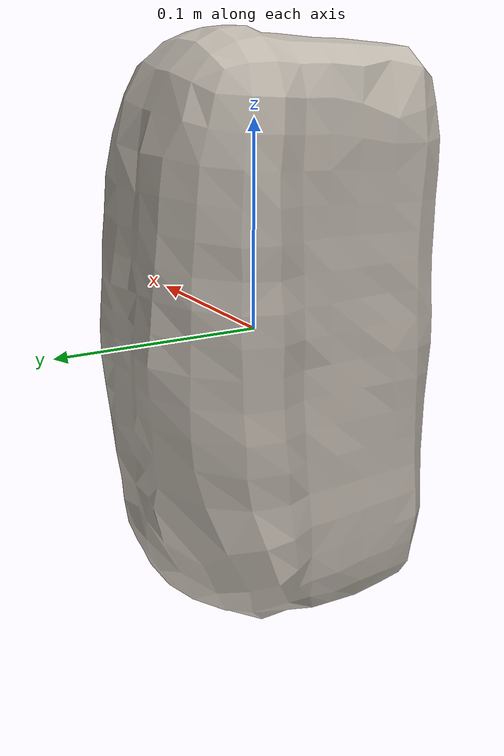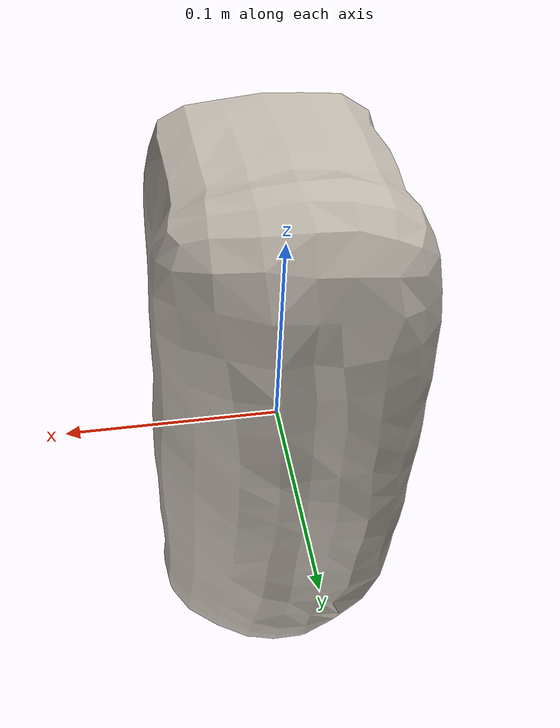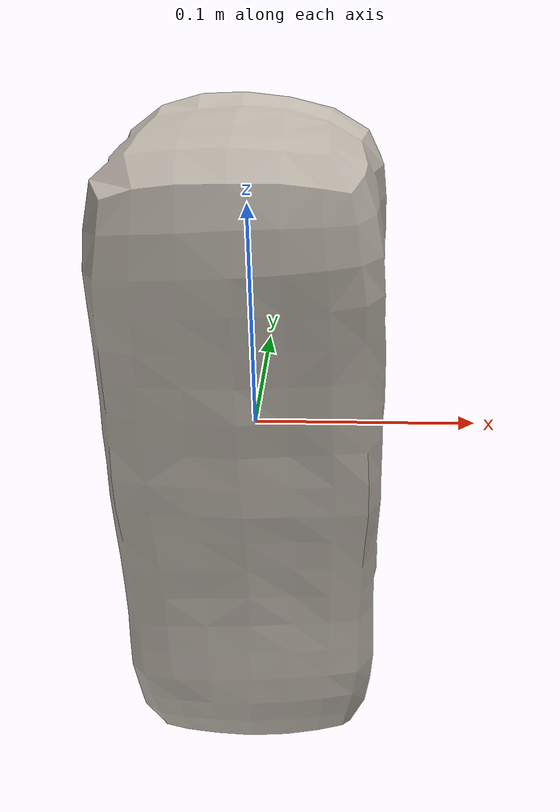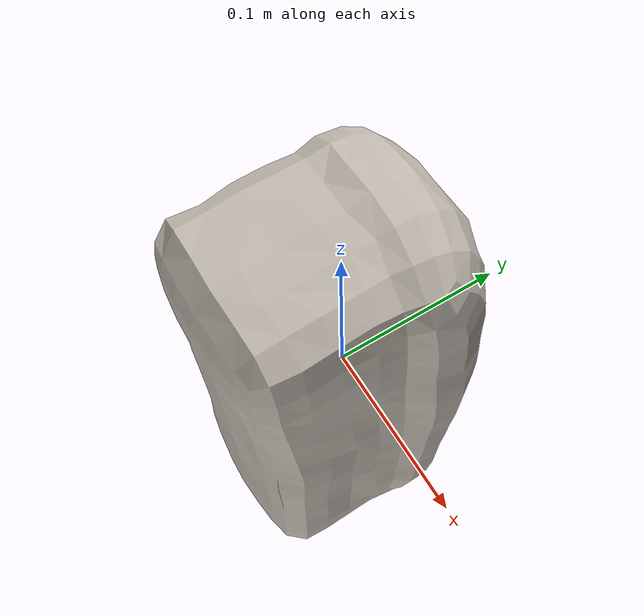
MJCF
<mujoco model="Bread_1">
  <compiler autolimits="true" boundmass="0.01" angle="radian"/>
  <default>
    <default class="/">
      <default class="__VISUAL_MJT__">
        <geom contype="0" conaffinity="0" group="0"/>
      </default>
      <default class="__STRUCTURAL_MJT__">
        <geom contype="8" conaffinity="15" group="4" friction="0.90000000000000002 0.90000000000000002 0.001" solref="0.025000000000000001 1" solimp="0.998 0.998 0.001"/>
      </default>
      <default class="__DYNAMIC_MJT__">
        <geom contype="1" conaffinity="15" group="4" friction="0.90000000000000002 0.90000000000000002 0.001" solref="0.025000000000000001 1" solimp="0.998 0.998 0.001"/>
      </default>
    </default>
  </default>
  <asset>
    <texture name="Bread1_Mat1" type="2d" file="Bread1_AlbedoTransparency.png"/>
    <material name="material_Bread1_Mat1" class="/" texture="Bread1_Mat1" specular="0.5" shininess="0.5" rgba="1 1 1 1"/>
    <mesh name="Bread_1_bread1_a_mesh" class="/" file="Bread_1_bread1_a_mesh/Bread_1_bread1_a_mesh.obj" scale="1 1 1"/>
  </asset>
  <worldbody>
    <body name="Bread_1">
      <joint name="Bread_1_free" class="/" type="free" pos="0 0 0" axis="0 0 1" stiffness="0" range="0 0" armature="0" damping="0.10000000000000001" frictionloss="0"/>
      <body name="Bread_1_bread1_a_mesh" pos="-0 -0.0034299999999999999 0" quat="1 0 0 0">
        <geom name="Bread_1_bread1_a_mesh" class="__VISUAL_MJT__" type="mesh" material="material_Bread1_Mat1" shellinertia="false" mesh="Bread_1_bread1_a_mesh"/>
        <geom name="Bread_1_PrimitiveCollider_0" class="__DYNAMIC_MJT__" type="box" size="0.052359446883201599 0.038263112306594849 0.13682135939598083" rgba="0 1 0 1" pos="-0 -0.032185941934585571 0.00026887655258178711" quat="1 0 0 0"/>
        <geom name="Bread_1_PrimitiveCollider_1" class="__DYNAMIC_MJT__" type="capsule" size="0.05917106568813324 0.084218934178352356" rgba="0 1 0 1" pos="-0 0.018146544694900513 1.1026859283447266e-06" quat="1.517286444557021e-06 0.99999999999884892 0 0"/>
      </body>
    </body>
  </worldbody>
</mujoco>
